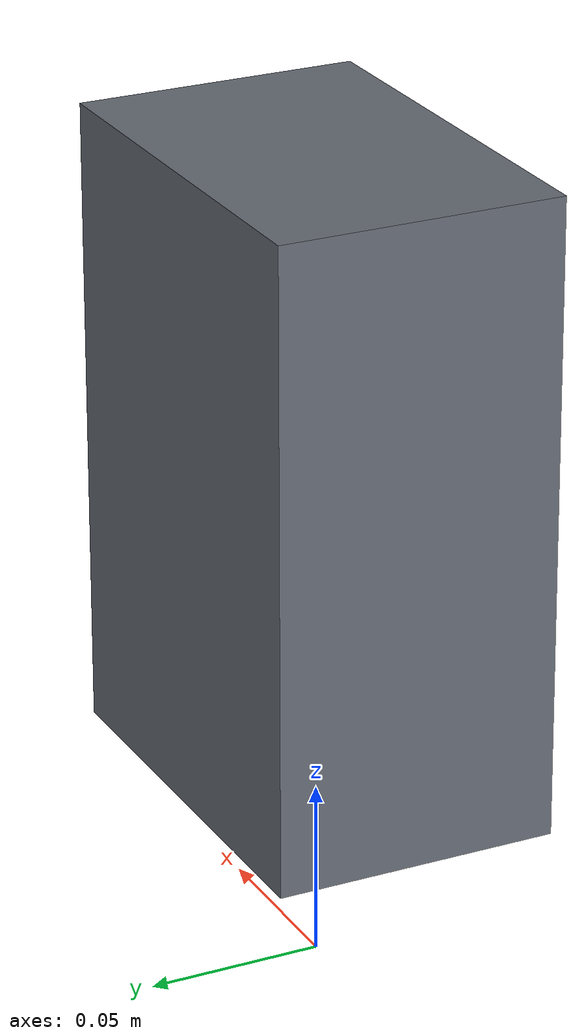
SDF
<?xml version="1.0"?>
<sdf version="1.9">
  <model name="room315_vla_payload_tall_box">
    <static>false</static>
    <link name="payload_link">
      <kinematic>true</kinematic>
      <gravity>false</gravity>
      <visual name="tall_box_body">
        <pose>0 0 0.145 0 0 0</pose>
        <geometry><box><size>0.120 0.080 0.180</size></box></geometry>
        <material><ambient>0.40 0.42 0.46 1</ambient><diffuse>0.40 0.42 0.46 1</diffuse><specular>0.12 0.12 0.12 1</specular></material>
      </visual>
      <collision name="tall_box_collision">
        <pose>0 0 0.145 0 0 0</pose>
        <geometry><box><size>0.120 0.080 0.180</size></box></geometry>
        <surface><contact><collide_bitmask>0x0000</collide_bitmask></contact></surface>
      </collision>
    </link>
  </model>
</sdf>
